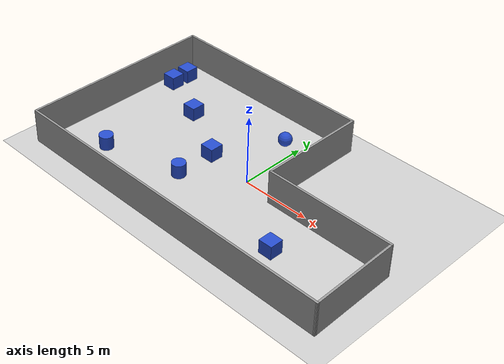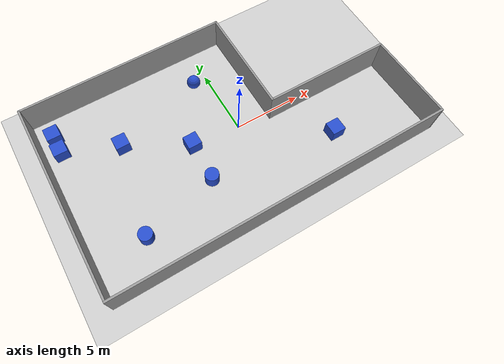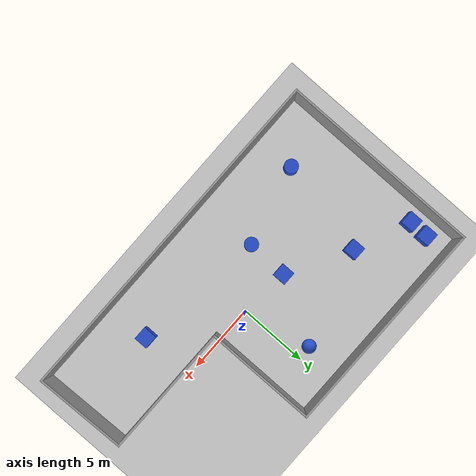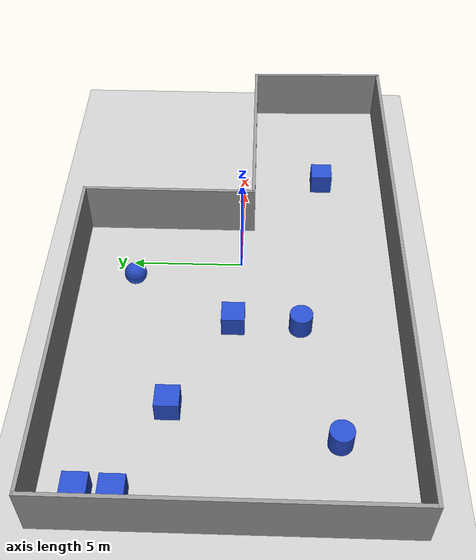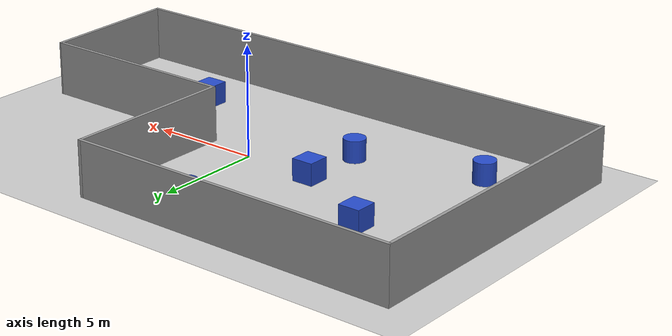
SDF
<sdf version="1.7">
 <world name="default">
  <light name="sun" type="directional">
   <pose>0 0 10 0 -0 0</pose>
   <diffuse>0.8 0.8 0.8 1</diffuse>
   <specular>0.2 0.2 0.2 1</specular>
   <attenuation>
    <range>1000</range>
    <constant>0.9</constant>
    <linear>0.01</linear>
    <quadratic>0.001</quadratic>
   </attenuation>
   <direction>-0.5 0.1 -0.9</direction>
   <spot><inner_angle>0</inner_angle><outer_angle>0</outer_angle><falloff>0</falloff></spot>
  </light>
  <model name="ground_plane">
   <static>1</static>
   <link name="link">
    <collision name="collision">
     <geometry><plane><normal>0 0 1</normal><size>100 100</size></plane></geometry>
     <surface><friction><ode><mu>100</mu><mu2>50</mu2></ode></friction></surface>
    </collision>
    <visual name="visual">
     <cast_shadows>0</cast_shadows>
     <geometry><plane><normal>0 0 1</normal><size>100 100</size></plane></geometry>
     <material>
      <script><uri>file://media/materials/scripts/gazebo.material</uri><name>Gazebo/Grey</name></script>
     </material>
    </visual>
   </link>
  </model>
  <gravity>0 0 -9.8</gravity>
  <magnetic_field>6e-06 2.3e-05 -4.2e-05</magnetic_field>
  <atmosphere type="adiabatic"/>
  <physics type="ode">
   <max_step_size>0.001</max_step_size>
   <real_time_factor>1</real_time_factor>
   <real_time_update_rate>1000</real_time_update_rate>
  </physics>
  <scene><ambient>0.4 0.4 0.4 1</ambient><background>0.7 0.7 0.7 1</background><shadows>1</shadows></scene>
  <audio><device>default</device></audio>
  <spherical_coordinates>
   <surface_model>EARTH_WGS84</surface_model>
   <latitude_deg>0</latitude_deg>
   <longitude_deg>0</longitude_deg>
   <elevation>0</elevation>
   <heading_deg>0</heading_deg>
  </spherical_coordinates>
  <model name="dummy_map">
   <pose>-0.530794 0.217105 0 0 -0 0</pose>
   <link name="Wall_10">
    <collision name="Wall_10_Collision">
     <geometry><box><size>25 0.15 2.5</size></box></geometry>
     <pose>0 0 1.25 0 -0 0</pose>
    </collision>
    <visual name="Wall_10_Visual">
     <pose>0 0 1.25 0 -0 0</pose>
     <geometry><box><size>25 0.15 2.5</size></box></geometry>
     <material>
      <script><uri>file://media/materials/scripts/gazebo.material</uri><name>Gazebo/Grey</name></script>
      <ambient>1 1 1 1</ambient>
     </material>
     <meta><layer>0</layer></meta>
    </visual>
    <pose>-0.000854 -7.17415 0 0 -0 0</pose>
   </link>
   <link name="Wall_12">
    <collision name="Wall_12_Collision">
     <geometry><box><size>14.5 0.15 2.5</size></box></geometry>
     <pose>0 0 1.25 0 -0 0</pose>
    </collision>
    <visual name="Wall_12_Visual">
     <pose>0 0 1.25 0 -0 0</pose>
     <geometry><box><size>14.5 0.15 2.5</size></box></geometry>
     <material>
      <script><uri>file://media/materials/scripts/gazebo.material</uri><name>Gazebo/Grey</name></script>
      <ambient>1 1 1 1</ambient>
     </material>
     <meta><layer>0</layer></meta>
    </visual>
    <pose>-12.4259 0.000855 0 0 -0 1.5708</pose>
   </link>
   <link name="Wall_13">
    <collision name="Wall_13_Collision">
     <geometry><box><size>15.5 0.15 2.5</size></box></geometry>
     <pose>0 0 1.25 0 -0 0</pose>
    </collision>
    <visual name="Wall_13_Visual">
     <pose>0 0 1.25 0 -0 0</pose>
     <geometry><box><size>15.5 0.15 2.5</size></box></geometry>
     <material>
      <script><uri>file://media/materials/scripts/gazebo.material</uri><name>Gazebo/Grey</name></script>
      <ambient>1 1 1 1</ambient>
     </material>
     <meta><layer>0</layer></meta>
    </visual>
    <pose>-4.75085 7.17586 0 0 -0 0</pose>
   </link>
   <link name="Wall_14">
    <collision name="Wall_14_Collision">
     <geometry><box><size>8 0.15 2.5</size></box></geometry>
     <pose>0 0 1.25 0 -0 0</pose>
    </collision>
    <visual name="Wall_14_Visual">
     <pose>0 0 1.25 0 -0 0</pose>
     <geometry><box><size>8 0.15 2.5</size></box></geometry>
     <material>
      <script><uri>file://media/materials/scripts/gazebo.material</uri><name>Gazebo/Grey</name></script>
      <ambient>1 1 1 1</ambient>
     </material>
     <meta><layer>0</layer></meta>
    </visual>
    <pose>2.92415 3.25086 0 0 -0 -1.5708</pose>
   </link>
   <link name="Wall_15">
    <collision name="Wall_15_Collision">
     <geometry><box><size>9.5 0.15 2.5</size></box></geometry>
     <pose>0 0 1.25 0 -0 0</pose>
    </collision>
    <visual name="Wall_15_Visual">
     <pose>0 0 1.25 0 -0 0</pose>
     <geometry><box><size>9.5 0.15 2.5</size></box></geometry>
     <material>
      <script><uri>file://media/materials/scripts/gazebo.material</uri><name>Gazebo/Grey</name></script>
      <ambient>1 1 1 1</ambient>
     </material>
     <meta><layer>0</layer></meta>
    </visual>
    <pose>7.59915 -0.674145 0 0 -0 0</pose>
   </link>
   <link name="Wall_16">
    <collision name="Wall_16_Collision">
     <geometry><box><size>6.65173 0.15 2.5</size></box></geometry>
     <pose>0 0 1.25 0 -0 0</pose>
    </collision>
    <visual name="Wall_16_Visual">
     <pose>0 0 1.25 0 -0 0</pose>
     <geometry><box><size>6.65173 0.15 2.5</size></box></geometry>
     <material>
      <script><uri>file://media/materials/scripts/gazebo.material</uri><name>Gazebo/Grey</name></script>
      <ambient>1 1 1 1</ambient>
     </material>
     <meta><layer>0</layer></meta>
    </visual>
    <pose>12.3491 -3.92415 0 0 -0 -1.54772</pose>
   </link>
   <static>1</static>
  </model>
  <model name="unit_box">
   <link name="link">
    <inertial>
     <mass>1</mass>
     <inertia>
      <ixx>0.166667</ixx>
      <ixy>0</ixy>
      <ixz>0</ixz>
      <iyy>0.166667</iyy>
      <iyz>0</iyz>
      <izz>0.166667</izz>
     </inertia>
    </inertial>
    <visual name="visual">
     <geometry><box><size>1 1 1</size></box></geometry>
     <material>
      <script><name>Gazebo/Blue</name><uri>file://media/materials/scripts/gazebo.material</uri></script>
      <shader type="pixel"><normal_map>__default__</normal_map></shader>
     </material>
    </visual>
    <collision name="collision">
     <geometry><box><size>1 1 1</size></box></geometry>
     <surface>
      <friction>
       <ode><mu>1</mu><mu2>1</mu2><fdir1>0 0 0</fdir1><slip1>0</slip1><slip2>0</slip2></ode>
       <torsional>
        <coefficient>1</coefficient>
        <patch_radius>0</patch_radius>
        <surface_radius>0</surface_radius>
        <use_patch_radius>1</use_patch_radius>
        <ode><slip>0</slip></ode>
       </torsional>
      </friction>
      <bounce><restitution_coefficient>0</restitution_coefficient><threshold>1e+06</threshold></bounce>
      <contact>
       <collide_without_contact>0</collide_without_contact>
       <collide_without_contact_bitmask>1</collide_without_contact_bitmask>
       <collide_bitmask>1</collide_bitmask>
       <ode>
        <soft_cfm>0</soft_cfm>
        <soft_erp>0.2</soft_erp>
        <kp>1e+13</kp>
        <kd>1</kd>
        <max_vel>0.01</max_vel>
        <min_depth>0</min_depth>
       </ode>
       <bullet>
        <split_impulse>1</split_impulse>
        <split_impulse_penetration_threshold>-0.01</split_impulse_penetration_threshold>
        <soft_cfm>0</soft_cfm>
        <soft_erp>0.2</soft_erp>
        <kp>1e+13</kp>
        <kd>1</kd>
       </bullet>
      </contact>
     </surface>
    </collision>
   </link>
   <link name="link_0">
    <inertial>
     <mass>1</mass>
     <inertia>
      <ixx>0.166667</ixx>
      <ixy>0</ixy>
      <ixz>0</ixz>
      <iyy>0.166667</iyy>
      <iyz>0</iyz>
      <izz>0.166667</izz>
     </inertia>
    </inertial>
    <pose>-0.03549 -1.36377 -0 0 -0 0</pose>
    <visual name="visual">
     <geometry><box><size>1 1 1</size></box></geometry>
     <material>
      <lighting>1</lighting>
      <script><uri>file://media/materials/scripts/gazebo.material</uri><name>Gazebo/Blue</name></script>
      <shader type="pixel"/>
     </material>
    </visual>
    <collision name="collision">
     <geometry><box><size>1 1 1</size></box></geometry>
     <surface>
      <friction>
       <ode><mu>1</mu><mu2>1</mu2><fdir1>0 0 0</fdir1><slip1>0</slip1><slip2>0</slip2></ode>
       <torsional>
        <coefficient>1</coefficient>
        <patch_radius>0</patch_radius>
        <surface_radius>0</surface_radius>
        <use_patch_radius>1</use_patch_radius>
        <ode><slip>0</slip></ode>
       </torsional>
      </friction>
      <bounce><restitution_coefficient>0</restitution_coefficient><threshold>1e+06</threshold></bounce>
      <contact>
       <collide_without_contact>0</collide_without_contact>
       <collide_without_contact_bitmask>1</collide_without_contact_bitmask>
       <collide_bitmask>1</collide_bitmask>
       <ode>
        <soft_cfm>0</soft_cfm>
        <soft_erp>0.2</soft_erp>
        <kp>1e+13</kp>
        <kd>1</kd>
        <max_vel>0.01</max_vel>
        <min_depth>0</min_depth>
       </ode>
       <bullet>
        <split_impulse>1</split_impulse>
        <split_impulse_penetration_threshold>-0.01</split_impulse_penetration_threshold>
        <soft_cfm>0</soft_cfm>
        <soft_erp>0.2</soft_erp>
        <kp>1e+13</kp>
        <kd>1</kd>
       </bullet>
      </contact>
     </surface>
    </collision>
   </link>
   <link name="link_1">
    <inertial>
     <mass>1</mass>
     <inertia>
      <ixx>0.166667</ixx>
      <ixy>0</ixy>
      <ixz>0</ixz>
      <iyy>0.166667</iyy>
      <iyz>0</iyz>
      <izz>0.166667</izz>
     </inertia>
    </inertial>
    <pose>3.86885 -3.02443 -0 0 -0 0</pose>
    <visual name="visual">
     <geometry><box><size>1 1 1</size></box></geometry>
     <material>
      <lighting>1</lighting>
      <script><uri>file://media/materials/scripts/gazebo.material</uri><name>Gazebo/Blue</name></script>
      <shader type="pixel"/>
     </material>
    </visual>
    <collision name="collision">
     <geometry><box><size>1 1 1</size></box></geometry>
     <surface>
      <friction>
       <ode><mu>1</mu><mu2>1</mu2><fdir1>0 0 0</fdir1><slip1>0</slip1><slip2>0</slip2></ode>
       <torsional>
        <coefficient>1</coefficient>
        <patch_radius>0</patch_radius>
        <surface_radius>0</surface_radius>
        <use_patch_radius>1</use_patch_radius>
        <ode><slip>0</slip></ode>
       </torsional>
      </friction>
      <bounce><restitution_coefficient>0</restitution_coefficient><threshold>1e+06</threshold></bounce>
      <contact>
       <collide_without_contact>0</collide_without_contact>
       <collide_without_contact_bitmask>1</collide_without_contact_bitmask>
       <collide_bitmask>1</collide_bitmask>
       <ode>
        <soft_cfm>0</soft_cfm>
        <soft_erp>0.2</soft_erp>
        <kp>1e+13</kp>
        <kd>1</kd>
        <max_vel>0.01</max_vel>
        <min_depth>0</min_depth>
       </ode>
       <bullet>
        <split_impulse>1</split_impulse>
        <split_impulse_penetration_threshold>-0.01</split_impulse_penetration_threshold>
        <soft_cfm>0</soft_cfm>
        <soft_erp>0.2</soft_erp>
        <kp>1e+13</kp>
        <kd>1</kd>
       </bullet>
      </contact>
     </surface>
    </collision>
   </link>
   <link name="link_2">
    <inertial>
     <mass>1</mass>
     <inertia>
      <ixx>0.166667</ixx>
      <ixy>0</ixy>
      <ixz>0</ixz>
      <iyy>0.166667</iyy>
      <iyz>0</iyz>
      <izz>0.166667</izz>
     </inertia>
    </inertial>
    <pose>8.19767 -5.46601 -0 0 -0 0</pose>
    <visual name="visual">
     <geometry><box><size>1 1 1</size></box></geometry>
     <material>
      <lighting>1</lighting>
      <script><uri>file://media/materials/scripts/gazebo.material</uri><name>Gazebo/Blue</name></script>
      <shader type="pixel"/>
     </material>
    </visual>
    <collision name="collision">
     <geometry><box><size>1 1 1</size></box></geometry>
     <surface>
      <friction>
       <ode><mu>1</mu><mu2>1</mu2><fdir1>0 0 0</fdir1><slip1>0</slip1><slip2>0</slip2></ode>
       <torsional>
        <coefficient>1</coefficient>
        <patch_radius>0</patch_radius>
        <surface_radius>0</surface_radius>
        <use_patch_radius>1</use_patch_radius>
        <ode><slip>0</slip></ode>
       </torsional>
      </friction>
      <bounce><restitution_coefficient>0</restitution_coefficient><threshold>1e+06</threshold></bounce>
      <contact>
       <collide_without_contact>0</collide_without_contact>
       <collide_without_contact_bitmask>1</collide_without_contact_bitmask>
       <collide_bitmask>1</collide_bitmask>
       <ode>
        <soft_cfm>0</soft_cfm>
        <soft_erp>0.2</soft_erp>
        <kp>1e+13</kp>
        <kd>1</kd>
        <max_vel>0.01</max_vel>
        <min_depth>0</min_depth>
       </ode>
       <bullet>
        <split_impulse>1</split_impulse>
        <split_impulse_penetration_threshold>-0.01</split_impulse_penetration_threshold>
        <soft_cfm>0</soft_cfm>
        <soft_erp>0.2</soft_erp>
        <kp>1e+13</kp>
        <kd>1</kd>
       </bullet>
      </contact>
     </surface>
    </collision>
   </link>
   <link name="link_3">
    <inertial>
     <mass>1</mass>
     <inertia>
      <ixx>0.166667</ixx>
      <ixy>0</ixy>
      <ixz>0</ixz>
      <iyy>0.166667</iyy>
      <iyz>0</iyz>
      <izz>0.166667</izz>
     </inertia>
    </inertial>
    <pose>17.4233 -9.57853 -0 0 -0 0</pose>
    <visual name="visual">
     <geometry><box><size>1 1 1</size></box></geometry>
     <material>
      <lighting>1</lighting>
      <script><uri>file://media/materials/scripts/gazebo.material</uri><name>Gazebo/Blue</name></script>
      <shader type="pixel"/>
     </material>
    </visual>
    <collision name="collision">
     <geometry><box><size>1 1 1</size></box></geometry>
     <surface>
      <friction>
       <ode><mu>1</mu><mu2>1</mu2><fdir1>0 0 0</fdir1><slip1>0</slip1><slip2>0</slip2></ode>
       <torsional>
        <coefficient>1</coefficient>
        <patch_radius>0</patch_radius>
        <surface_radius>0</surface_radius>
        <use_patch_radius>1</use_patch_radius>
        <ode><slip>0</slip></ode>
       </torsional>
      </friction>
      <bounce><restitution_coefficient>0</restitution_coefficient><threshold>1e+06</threshold></bounce>
      <contact>
       <collide_without_contact>0</collide_without_contact>
       <collide_without_contact_bitmask>1</collide_without_contact_bitmask>
       <collide_bitmask>1</collide_bitmask>
       <ode>
        <soft_cfm>0</soft_cfm>
        <soft_erp>0.2</soft_erp>
        <kp>1e+13</kp>
        <kd>1</kd>
        <max_vel>0.01</max_vel>
        <min_depth>0</min_depth>
       </ode>
       <bullet>
        <split_impulse>1</split_impulse>
        <split_impulse_penetration_threshold>-0.01</split_impulse_penetration_threshold>
        <soft_cfm>0</soft_cfm>
        <soft_erp>0.2</soft_erp>
        <kp>1e+13</kp>
        <kd>1</kd>
       </bullet>
      </contact>
     </surface>
    </collision>
   </link>
   <link name="link_4">
    <inertial>
     <mass>1</mass>
     <inertia><ixx>0.1</ixx><ixy>0</ixy><ixz>0</ixz><iyy>0.1</iyy><iyz>0</iyz><izz>0.1</izz></inertia>
    </inertial>
    <pose>10.697 -0.984045 -0 0 -0 0</pose>
    <visual name="visual">
     <geometry><sphere><radius>0.5</radius></sphere></geometry>
     <material>
      <lighting>1</lighting>
      <script><uri>file://media/materials/scripts/gazebo.material</uri><name>Gazebo/Blue</name></script>
      <shader type="pixel"/>
     </material>
    </visual>
    <collision name="collision">
     <geometry><sphere><radius>0.5</radius></sphere></geometry>
     <surface>
      <friction>
       <ode><mu>1</mu><mu2>1</mu2><fdir1>0 0 0</fdir1><slip1>0</slip1><slip2>0</slip2></ode>
       <torsional>
        <coefficient>1</coefficient>
        <patch_radius>0</patch_radius>
        <surface_radius>0</surface_radius>
        <use_patch_radius>1</use_patch_radius>
        <ode><slip>0</slip></ode>
       </torsional>
      </friction>
      <bounce><restitution_coefficient>0</restitution_coefficient><threshold>1e+06</threshold></bounce>
      <contact>
       <collide_without_contact>0</collide_without_contact>
       <collide_without_contact_bitmask>1</collide_without_contact_bitmask>
       <collide_bitmask>1</collide_bitmask>
       <ode>
        <soft_cfm>0</soft_cfm>
        <soft_erp>0.2</soft_erp>
        <kp>1e+13</kp>
        <kd>1</kd>
        <max_vel>0.01</max_vel>
        <min_depth>0</min_depth>
       </ode>
       <bullet>
        <split_impulse>1</split_impulse>
        <split_impulse_penetration_threshold>-0.01</split_impulse_penetration_threshold>
        <soft_cfm>0</soft_cfm>
        <soft_erp>0.2</soft_erp>
        <kp>1e+13</kp>
        <kd>1</kd>
       </bullet>
      </contact>
     </surface>
    </collision>
   </link>
   <link name="link_5">
    <inertial>
     <mass>1</mass>
     <inertia><ixx>0.145833</ixx><ixy>0</ixy><ixz>0</ixz><iyy>0.145833</iyy><iyz>0</iyz><izz>0.125</izz></inertia>
    </inertial>
    <pose>2.48817 -9.80791 -0 0 -0 0</pose>
    <visual name="visual">
     <geometry><cylinder><radius>0.5</radius><length>1</length></cylinder></geometry>
     <material>
      <lighting>1</lighting>
      <script><uri>file://media/materials/scripts/gazebo.material</uri><name>Gazebo/Blue</name></script>
      <shader type="pixel"/>
     </material>
    </visual>
    <collision name="collision">
     <geometry><cylinder><radius>0.5</radius><length>1</length></cylinder></geometry>
     <surface>
      <friction>
       <ode><mu>1</mu><mu2>1</mu2><fdir1>0 0 0</fdir1><slip1>0</slip1><slip2>0</slip2></ode>
       <torsional>
        <coefficient>1</coefficient>
        <patch_radius>0</patch_radius>
        <surface_radius>0</surface_radius>
        <use_patch_radius>1</use_patch_radius>
        <ode><slip>0</slip></ode>
       </torsional>
      </friction>
      <bounce><restitution_coefficient>0</restitution_coefficient><threshold>1e+06</threshold></bounce>
      <contact>
       <collide_without_contact>0</collide_without_contact>
       <collide_without_contact_bitmask>1</collide_without_contact_bitmask>
       <collide_bitmask>1</collide_bitmask>
       <ode>
        <soft_cfm>0</soft_cfm>
        <soft_erp>0.2</soft_erp>
        <kp>1e+13</kp>
        <kd>1</kd>
        <max_vel>0.01</max_vel>
        <min_depth>0</min_depth>
       </ode>
       <bullet>
        <split_impulse>1</split_impulse>
        <split_impulse_penetration_threshold>-0.01</split_impulse_penetration_threshold>
        <soft_cfm>0</soft_cfm>
        <soft_erp>0.2</soft_erp>
        <kp>1e+13</kp>
        <kd>1</kd>
       </bullet>
      </contact>
     </surface>
    </collision>
   </link>
   <link name="link_6">
    <inertial>
     <mass>1</mass>
     <inertia><ixx>0.145833</ixx><ixy>0</ixy><ixz>0</ixz><iyy>0.145833</iyy><iyz>0</iyz><izz>0.125</izz></inertia>
    </inertial>
    <pose>8.12358 -8.38082 -0 0 -0 0</pose>
    <visual name="visual">
     <geometry><cylinder><radius>0.5</radius><length>1</length></cylinder></geometry>
     <material>
      <lighting>1</lighting>
      <script><uri>file://media/materials/scripts/gazebo.material</uri><name>Gazebo/Blue</name></script>
      <shader type="pixel"/>
     </material>
    </visual>
    <collision name="collision">
     <geometry><cylinder><radius>0.5</radius><length>1</length></cylinder></geometry>
     <surface>
      <friction>
       <ode><mu>1</mu><mu2>1</mu2><fdir1>0 0 0</fdir1><slip1>0</slip1><slip2>0</slip2></ode>
       <torsional>
        <coefficient>1</coefficient>
        <patch_radius>0</patch_radius>
        <surface_radius>0</surface_radius>
        <use_patch_radius>1</use_patch_radius>
        <ode><slip>0</slip></ode>
       </torsional>
      </friction>
      <bounce><restitution_coefficient>0</restitution_coefficient><threshold>1e+06</threshold></bounce>
      <contact>
       <collide_without_contact>0</collide_without_contact>
       <collide_without_contact_bitmask>1</collide_without_contact_bitmask>
       <collide_bitmask>1</collide_bitmask>
       <ode>
        <soft_cfm>0</soft_cfm>
        <soft_erp>0.2</soft_erp>
        <kp>1e+13</kp>
        <kd>1</kd>
        <max_vel>0.01</max_vel>
        <min_depth>0</min_depth>
       </ode>
       <bullet>
        <split_impulse>1</split_impulse>
        <split_impulse_penetration_threshold>-0.01</split_impulse_penetration_threshold>
        <soft_cfm>0</soft_cfm>
        <soft_erp>0.2</soft_erp>
        <kp>1e+13</kp>
        <kd>1</kd>
       </bullet>
      </contact>
     </surface>
    </collision>
   </link>
   <static>0</static>
   <pose>-11.7648 5.75692 0.5 0 -0 0</pose>
  </model>
 </world>
</sdf>
